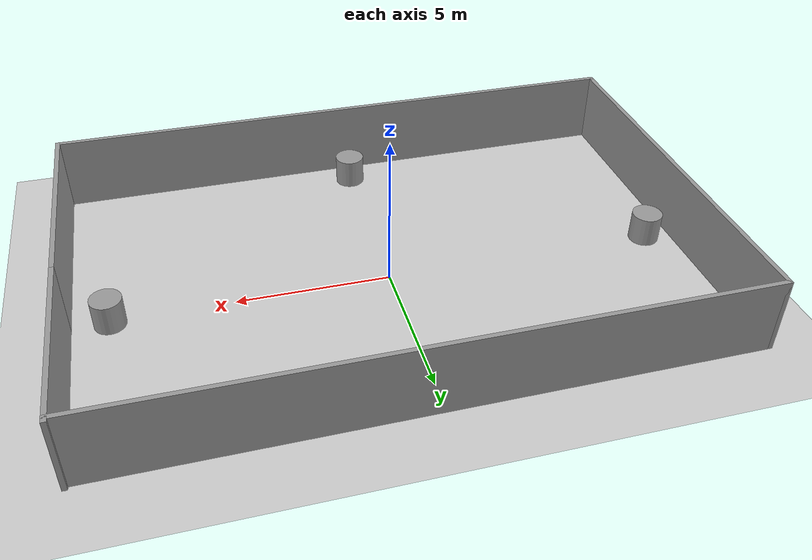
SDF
<sdf version="1.6">
	<world name="default">
		<light name="sun" type="directional">
			<cast_shadows>1</cast_shadows>
			<pose frame="">0 0 10 0 -0 0</pose>
			<diffuse>0.8 0.8 0.8 1</diffuse>
			<specular>0.2 0.2 0.2 1</specular>
			<attenuation>
				<range>1000</range>
				<constant>0.9</constant>
				<linear>0.01</linear>
				<quadratic>0.001</quadratic>
			</attenuation>
			<direction>-0.5 0.1 -0.9</direction>
		</light>
		<model name="ground_plane">
			<static>1</static>
			<link name="link">
				<collision name="collision">
					<geometry>
						<plane>
							<normal>0 0 1</normal>
							<size>100 100</size>
						</plane>
					</geometry>
					<surface>
						<contact>
							<collide_bitmask>65535</collide_bitmask>
							<ode/>
						</contact>
						<friction>
							<ode>
								<mu>100</mu>
								<mu2>50</mu2>
							</ode>
							<torsional>
								<ode/>
							</torsional>
						</friction>
						<bounce/>
					</surface>
					<max_contacts>10</max_contacts>
				</collision>
				<visual name="visual">
					<cast_shadows>0</cast_shadows>
					<geometry>
						<plane>
							<normal>0 0 1</normal>
							<size>100 100</size>
						</plane>
					</geometry>
					<material>
						<script>
							<uri>file://media/materials/scripts/gazebo.material</uri>
							<name>Gazebo/Grey</name>
						</script>
					</material>
				</visual>
				<self_collide>0</self_collide>
				<enable_wind>0</enable_wind>
				<kinematic>0</kinematic>
			</link>
		</model>
		<gravity>0 0 -9.8</gravity>
		<magnetic_field>6e-06 2.3e-05 -4.2e-05</magnetic_field>
		<atmosphere type="adiabatic"/>
		<physics name="default_physics" default="0" type="ode">
			<max_step_size>0.001</max_step_size>
			<real_time_factor>1</real_time_factor>
			<real_time_update_rate>1000</real_time_update_rate>
		</physics>
		<scene>
			<ambient>0.4 0.4 0.4 1</ambient>
			<background>0.7 0.7 0.7 1</background>
			<shadows>1</shadows>
		</scene>
		<audio>
			<device>default</device>
		</audio>
		<wind/>
		<spherical_coordinates>
			<surface_model>EARTH_WGS84</surface_model>
			<latitude_deg>0</latitude_deg>
			<longitude_deg>0</longitude_deg>
			<elevation>0</elevation>
			<heading_deg>0</heading_deg>
		</spherical_coordinates>
		<model name="familiar">
			<pose frame="">0.026419 -0.471549 0 0 -0 0</pose>
			<link name="Wall_12">
				<collision name="Wall_12_Collision">
					<geometry>
						<box>
							<size>6.25 0.15 2.5</size>
						</box>
					</geometry>
					<pose frame="">0 0 1.25 0 -0 0</pose>
					<max_contacts>10</max_contacts>
					<surface>
						<contact>
							<ode/>
						</contact>
						<bounce/>
						<friction>
							<torsional>
								<ode/>
							</torsional>
							<ode/>
						</friction>
					</surface>
				</collision>
				<visual name="Wall_12_Visual">
					<pose frame="">0 0 1.25 0 -0 0</pose>
					<geometry>
						<box>
							<size>6.25 0.15 2.5</size>
						</box>
					</geometry>
					<material>
						<script>
							<uri>file://media/materials/scripts/gazebo.material</uri>
							<name>Gazebo/Grey</name>
						</script>
						<ambient>1 1 1 1</ambient>
					</material>
					<meta>
						<layer>0</layer>
					</meta>
				</visual>
				<pose frame="">10.05 3.55 0 0 -0 1.5708</pose>
				<self_collide>0</self_collide>
				<enable_wind>0</enable_wind>
				<kinematic>0</kinematic>
			</link>
			<link name="Wall_23">
				<collision name="Wall_23_Collision">
					<geometry>
						<box>
							<size>13.25 0.15 2.5</size>
						</box>
					</geometry>
					<pose frame="">0 0 1.25 0 -0 0</pose>
					<max_contacts>10</max_contacts>
					<surface>
						<contact>
							<ode/>
						</contact>
						<bounce/>
						<friction>
							<torsional>
								<ode/>
							</torsional>
							<ode/>
						</friction>
					</surface>
				</collision>
				<visual name="Wall_23_Visual">
					<pose frame="">0 0 1.25 0 -0 0</pose>
					<geometry>
						<box>
							<size>13.25 0.15 2.5</size>
						</box>
					</geometry>
					<material>
						<script>
							<uri>file://media/materials/scripts/gazebo.material</uri>
							<name>Gazebo/Grey</name>
						</script>
						<ambient>1 1 1 1</ambient>
					</material>
					<meta>
						<layer>0</layer>
					</meta>
				</visual>
				<pose frame="">-10.05 -0.05 0 0 -0 1.5708</pose>
				<self_collide>0</self_collide>
				<enable_wind>0</enable_wind>
				<kinematic>0</kinematic>
			</link>
			<link name="Wall_25">
				<collision name="Wall_25_Collision">
					<geometry>
						<box>
							<size>20.25 0.15 2.5</size>
						</box>
					</geometry>
					<pose frame="">0 0 1.25 0 -0 0</pose>
					<max_contacts>10</max_contacts>
					<surface>
						<contact>
							<ode/>
						</contact>
						<bounce/>
						<friction>
							<torsional>
								<ode/>
							</torsional>
							<ode/>
						</friction>
					</surface>
				</collision>
				<visual name="Wall_25_Visual">
					<pose frame="">0 0 1.25 0 -0 0</pose>
					<geometry>
						<box>
							<size>20.25 0.15 2.5</size>
						</box>
					</geometry>
					<material>
						<script>
							<uri>file://media/materials/scripts/gazebo.material</uri>
							<name>Gazebo/Grey</name>
						</script>
						<ambient>1 1 1 1</ambient>
					</material>
					<meta>
						<layer>0</layer>
					</meta>
				</visual>
				<pose frame="">0 6.5 0 0 -0 0</pose>
				<self_collide>0</self_collide>
				<enable_wind>0</enable_wind>
				<kinematic>0</kinematic>
			</link>
			<link name="Wall_6">
				<collision name="Wall_6_Collision">
					<geometry>
						<box>
							<size>20.25 0.15 2.5</size>
						</box>
					</geometry>
					<pose frame="">0 0 1.25 0 -0 0</pose>
					<max_contacts>10</max_contacts>
					<surface>
						<contact>
							<ode/>
						</contact>
						<bounce/>
						<friction>
							<torsional>
								<ode/>
							</torsional>
							<ode/>
						</friction>
					</surface>
				</collision>
				<visual name="Wall_6_Visual">
					<pose frame="">0 0 1.25 0 -0 0</pose>
					<geometry>
						<box>
							<size>20.25 0.15 2.5</size>
						</box>
					</geometry>
					<material>
						<script>
							<uri>file://media/materials/scripts/gazebo.material</uri>
							<name>Gazebo/Grey</name>
						</script>
						<ambient>1 1 1 1</ambient>
					</material>
					<meta>
						<layer>0</layer>
					</meta>
				</visual>
				<pose frame="">0 -6.6 0 0 -0 0</pose>
				<self_collide>0</self_collide>
				<enable_wind>0</enable_wind>
				<kinematic>0</kinematic>
			</link>
			<link name="Wall_9">
				<collision name="Wall_9_Collision">
					<geometry>
						<box>
							<size>7.25 0.15 2.5</size>
						</box>
					</geometry>
					<pose frame="">0 0 1.25 0 -0 0</pose>
					<max_contacts>10</max_contacts>
					<surface>
						<contact>
							<ode/>
						</contact>
						<bounce/>
						<friction>
							<torsional>
								<ode/>
							</torsional>
							<ode/>
						</friction>
					</surface>
				</collision>
				<visual name="Wall_9_Visual">
					<pose frame="">0 0 1.25 0 -0 0</pose>
					<geometry>
						<box>
							<size>7.25 0.15 2.5</size>
						</box>
					</geometry>
					<material>
						<script>
							<uri>file://media/materials/scripts/gazebo.material</uri>
							<name>Gazebo/Grey</name>
						</script>
						<ambient>1 1 1 1</ambient>
					</material>
					<meta>
						<layer>0</layer>
					</meta>
				</visual>
				<pose frame="">10.05 -3.05 0 0 -0 1.5708</pose>
				<self_collide>0</self_collide>
				<enable_wind>0</enable_wind>
				<kinematic>0</kinematic>
			</link>
			<static>1</static>
		</model>
		<model name="unit_cylinder">
			<pose frame="">8.8423 0.045332 0.5 0 -0 0</pose>
			<link name="link">
				<inertial>
					<mass>1</mass>
					<inertia>
						<ixx>0.145833</ixx>
						<ixy>0</ixy>
						<ixz>0</ixz>
						<iyy>0.145833</iyy>
						<iyz>0</iyz>
						<izz>0.125</izz>
					</inertia>
				</inertial>
				<collision name="collision">
					<geometry>
						<cylinder>
							<radius>0.5</radius>
							<length>1</length>
						</cylinder>
					</geometry>
					<max_contacts>10</max_contacts>
					<surface>
						<contact>
							<ode/>
						</contact>
						<bounce/>
						<friction>
							<torsional>
								<ode/>
							</torsional>
							<ode/>
						</friction>
					</surface>
				</collision>
				<visual name="visual">
					<geometry>
						<cylinder>
							<radius>0.5</radius>
							<length>1</length>
						</cylinder>
					</geometry>
					<material>
						<script>
							<name>Gazebo/Grey</name>
							<uri>file://media/materials/scripts/gazebo.material</uri>
						</script>
					</material>
				</visual>
				<self_collide>0</self_collide>
				<enable_wind>0</enable_wind>
				<kinematic>0</kinematic>
			</link>
		</model>
		<model name="unit_cylinder_0">
			<pose frame="">-0.065533 -6.09368 0.5 0 -0 0</pose>
			<link name="link">
				<inertial>
					<mass>1</mass>
					<inertia>
						<ixx>0.145833</ixx>
						<ixy>0</ixy>
						<ixz>0</ixz>
						<iyy>0.145833</iyy>
						<iyz>0</iyz>
						<izz>0.125</izz>
					</inertia>
				</inertial>
				<collision name="collision">
					<geometry>
						<cylinder>
							<radius>0.5</radius>
							<length>1</length>
						</cylinder>
					</geometry>
					<max_contacts>10</max_contacts>
					<surface>
						<contact>
							<ode/>
						</contact>
						<bounce/>
						<friction>
							<torsional>
								<ode/>
							</torsional>
							<ode/>
						</friction>
					</surface>
				</collision>
				<visual name="visual">
					<geometry>
						<cylinder>
							<radius>0.5</radius>
							<length>1</length>
						</cylinder>
					</geometry>
					<material>
						<script>
							<name>Gazebo/Grey</name>
							<uri>file://media/materials/scripts/gazebo.material</uri>
						</script>
					</material>
				</visual>
				<self_collide>0</self_collide>
				<enable_wind>0</enable_wind>
				<kinematic>0</kinematic>
			</link>
		</model>
		<model name="unit_cylinder_1">
			<pose frame="">0.020633 5.07693 0.5 0 -0 0</pose>
			<link name="link">
				<inertial>
					<mass>1</mass>
					<inertia>
						<ixx>0.145833</ixx>
						<ixy>0</ixy>
						<ixz>0</ixz>
						<iyy>0.145833</iyy>
						<iyz>0</iyz>
						<izz>0.125</izz>
					</inertia>
				</inertial>
				<collision name="collision">
					<geometry>
						<cylinder>
							<radius>0.5</radius>
							<length>1</length>
						</cylinder>
					</geometry>
					<max_contacts>10</max_contacts>
					<surface>
						<contact>
							<ode/>
						</contact>
						<bounce/>
						<friction>
							<torsional>
								<ode/>
							</torsional>
							<ode/>
						</friction>
					</surface>
				</collision>
				<visual name="visual">
					<geometry>
						<cylinder>
							<radius>0.5</radius>
							<length>1</length>
						</cylinder>
					</geometry>
					<material>
						<script>
							<name>Gazebo/Grey</name>
							<uri>file://media/materials/scripts/gazebo.material</uri>
						</script>
					</material>
				</visual>
				<self_collide>0</self_collide>
				<enable_wind>0</enable_wind>
				<kinematic>0</kinematic>
			</link>
		</model>
		<model name="unit_cylinder_2">
			<pose frame="">-9.02497 0.0516 0.5 0 -0 0</pose>
			<link name="link">
				<inertial>
					<mass>1</mass>
					<inertia>
						<ixx>0.145833</ixx>
						<ixy>0</ixy>
						<ixz>0</ixz>
						<iyy>0.145833</iyy>
						<iyz>0</iyz>
						<izz>0.125</izz>
					</inertia>
				</inertial>
				<collision name="collision">
					<geometry>
						<cylinder>
							<radius>0.5</radius>
							<length>1</length>
						</cylinder>
					</geometry>
					<max_contacts>10</max_contacts>
					<surface>
						<contact>
							<ode/>
						</contact>
						<bounce/>
						<friction>
							<torsional>
								<ode/>
							</torsional>
							<ode/>
						</friction>
					</surface>
				</collision>
				<visual name="visual">
					<geometry>
						<cylinder>
							<radius>0.5</radius>
							<length>1</length>
						</cylinder>
					</geometry>
					<material>
						<script>
							<name>Gazebo/Grey</name>
							<uri>file://media/materials/scripts/gazebo.material</uri>
						</script>
					</material>
				</visual>
				<self_collide>0</self_collide>
				<enable_wind>0</enable_wind>
				<kinematic>0</kinematic>
			</link>
		</model>
	</world>
</sdf>
